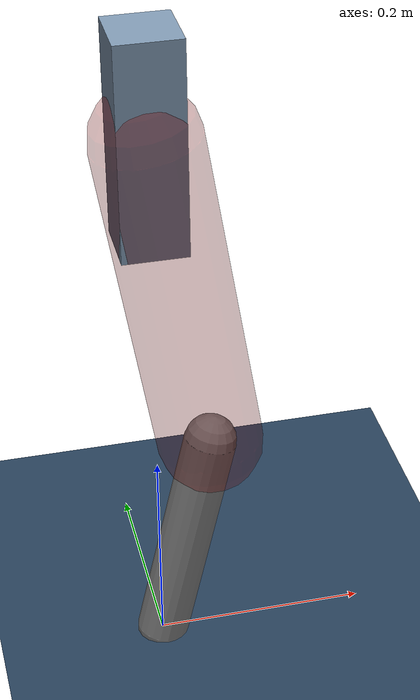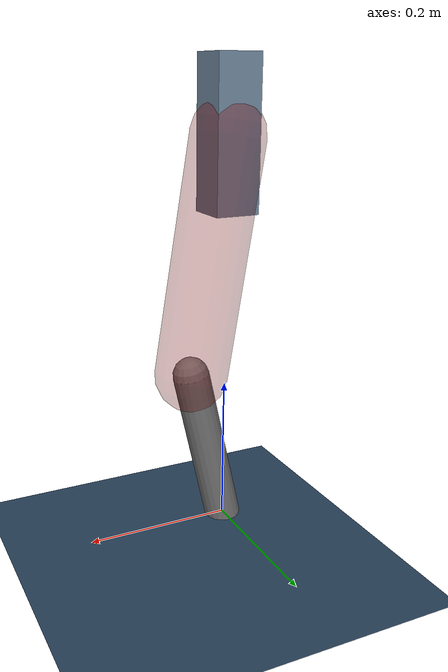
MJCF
<mujoco model="Hopper2D">
	<compiler inertiafromgeom="true" angle="radian" />
	<option timestep="0.001" integrator="implicit" cone="elliptic" solver="Newton" tolerance="1e-10" />

	<default>
		<geom contype="1" conaffinity="1" condim="3" friction="2 0.005 0.0001" solref="0.005 1" />
		<joint limited="true" damping="0.1" />
	</default>

	<asset>
		<texture name="skybox" type="skybox" builtin="gradient" rgb1=".4 .6 .8" rgb2="0 0 0" width="800" height="800" />
		<texture name="grid" type="2d" builtin="checker" rgb1=".1 .2 .3" rgb2=".2 .3 .4" width="300" height="300" mark="edge" markrgb=".2 .3 .4" />
		<material name="ground" texture="grid" texrepeat="1 1" texuniform="true" reflectance="0.1" />
		<material name="leg" rgba="0.5 0.6 0.7 1" />
	</asset>

	<worldbody>

		<geom name="floor" type="plane" size="5 5 0.25" material="ground" />

		<light directional="false" diffuse="0.8 0.8 0.8" specular="0.3 0.3 0.3" pos="0 0 2" dir="0 0 -1" />
		<light mode="targetbodycom" target="base" directional="false" diffuse="0.8 0.8 0.8" specular="0.3 0.3 0.3" pos="0 0 2" dir="0 0 -1" />

		<camera name="fixed" pos="0 -2 1" xyaxes="1 0 0 0 0 1" />
		<camera name="tracking" mode="trackcom" pos="0 -3 1" />

		<body name="root" pos="0 0 0.5392321127974001">
			<joint name="slide_x" type="slide" axis="1 0 0" range="-100 100" />
			<joint name="slide_z" type="slide" axis="0 0 1" range="0 10" />

			<body name="base" pos="0 0 0">
				<geom name="torso" type="box" size="0.03 0.03 0.1" mass="1.973" material="leg" />

				<body name="link1" pos="0 0 0" euler="0 1.4107616386220636 0">
					<joint type="hinge" axis="0 -1 0" pos="0 0 0" name="hinge1" limited="true" range="-3.14 3.14" stiffness="0" damping="0.1" />
					<geom name="thigh" type="capsule" fromto="0 0 0 0.32221311832010274 0 0" size="0.05" rgba="0.5 0 0 0.3" mass="1.0492967312962878" />

					<body name="link2" pos="0.32221311832010274 0 0" euler="0 0.3881812330392877 0">
						<joint type="hinge" axis="0 -1 0" pos="0 0 0" name="hinge2" limited="true" range="-3.14 3.14" stiffness="0" damping="0.1" />
						<geom name="shank" type="capsule" fromto="0 0 0 0.22701899447729737 0 0" size="0.025" mass="0.42351519558183787" />

					</body>
				</body>
			</body>
		</body>
	</worldbody>

	<actuator>
		<motor name="torque1" joint="hinge1" ctrlrange="-34.65741161502608 34.65741161502608" ctrllimited="true" gear="1" />
		<motor name="torque2" joint="hinge2" ctrlrange="-75.84225154935639 75.84225154935639" ctrllimited="true" gear="1" />
	</actuator>
</mujoco>
